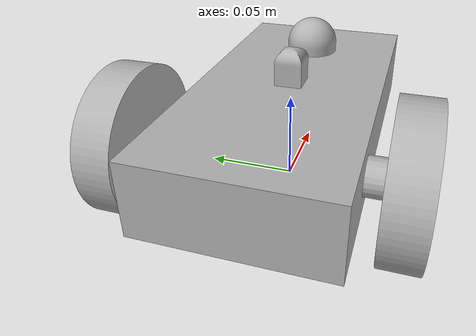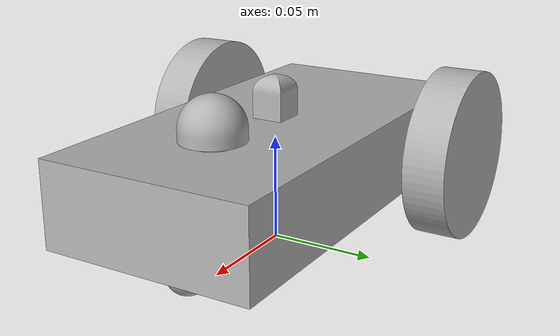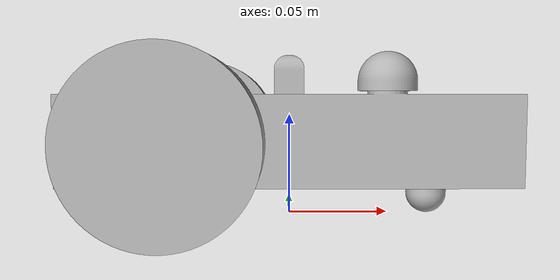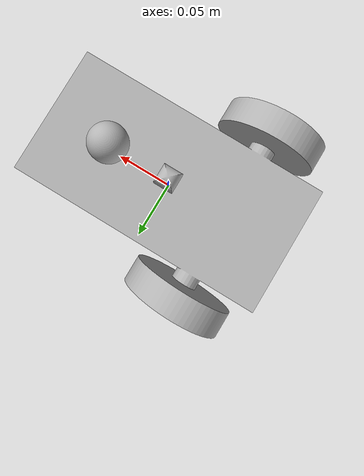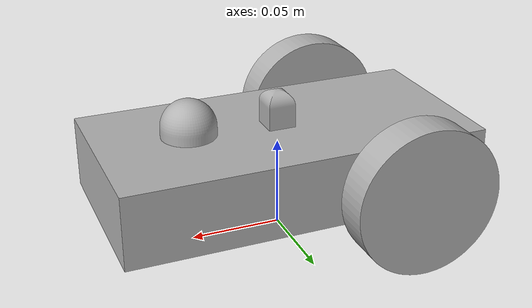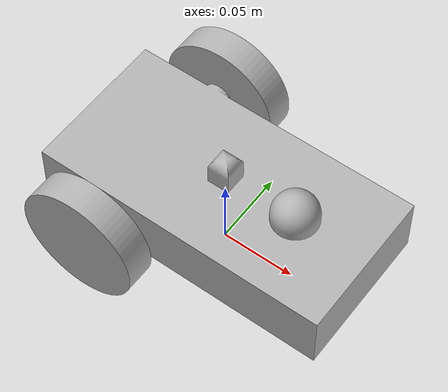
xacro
<?xml version="1.0" ?>
<robot name="my2wbnew" xmlns:xacro="http://www.ros.org/wiki/xacro">

<xacro:include filename="$(find my2wbnew_description)/urdf/materials.xacro" />
<xacro:include filename="$(find my2wbnew_description)/urdf/my2wbnew.trans" />
<xacro:include filename="$(find my2wbnew_description)/urdf/my2wbnew.gazebo" />

<link name="base_link">
  <pose>0 0 0.1 0 0 0</pose>    <!-- here  -->
  <inertial>
    <origin rpy="0 0 0" xyz="-0.0002870496075899094 0.0 0.03999708253972357"/>
    <mass value="6.339804143151893"/>
    <inertia ixx="0.006227" ixy="0.0" ixz="3e-06" iyy="0.02194" iyz="0.0" izz="0.026479"/>
  </inertial>
  <visual>
    <origin rpy="0 0 0" xyz="0 0 0"/>
    <geometry>
      <mesh filename="package://my2wbnew_description/meshes/base_link.stl" scale="0.001 0.001 0.001"/>
    </geometry>
    <material name="silver"/>
  </visual>
  <collision>
    <origin rpy="0 0 0" xyz="0 0 0"/>
    <geometry>
      <mesh filename="package://my2wbnew_description/meshes/base_link.stl" scale="0.001 0.001 0.001"/>
    </geometry>
  </collision>
</link>
<link name="base_footprint">
</link>
<joint name="dummy_joint" type="fixed">
  <parent link="base_footprint"/>
  <child link="base_link"/>
</joint>

<link name="left_wheel_1">
  <inertial>
    <origin rpy="0 0 0" xyz="1.386726641017244e-07 0.010000000000000009 -6.938893903907228e-18"/>
    <mass value="0.789168074581756"/>
    <inertia ixx="0.000342" ixy="0.0" ixz="-0.0" iyy="0.000631" iyz="0.0" izz="0.000342"/>
  </inertial>
  <visual>
    <origin rpy="0 0 0" xyz="0.049786 -0.06 -0.04"/>
    <geometry>
      <mesh filename="package://my2wbnew_description/meshes/left_wheel_1.stl" scale="0.001 0.001 0.001"/>
    </geometry>
    <material name="silver"/>
  </visual>
  <collision>
    <origin rpy="0 0 0" xyz="0.049786 -0.06 -0.04"/>
    <geometry>
      <mesh filename="package://my2wbnew_description/meshes/left_wheel_1.stl" scale="0.001 0.001 0.001"/>
    </geometry>
  </collision>
</link>

<link name="right_wheel_1">
  <inertial>
    <origin rpy="0 0 0" xyz="1.386726641017244e-07 -0.010000000000000009 -6.938893903907228e-18"/>
    <mass value="0.789168074581756"/>
    <inertia ixx="0.000342" ixy="0.0" ixz="-0.0" iyy="0.000631" iyz="-0.0" izz="0.000342"/>
  </inertial>
  <visual>
    <origin rpy="0 0 0" xyz="0.049786 0.06 -0.04"/>
    <geometry>
      <mesh filename="package://my2wbnew_description/meshes/right_wheel_1.stl" scale="0.001 0.001 0.001"/>
    </geometry>
    <material name="silver"/>
  </visual>
  <collision>
    <origin rpy="0 0 0" xyz="0.049786 0.06 -0.04"/>
    <geometry>
      <mesh filename="package://my2wbnew_description/meshes/right_wheel_1.stl" scale="0.001 0.001 0.001"/>
    </geometry>
  </collision>
</link>

<link name="caster_wheel_1">
  <inertial>
    <origin rpy="0 0 0" xyz="1.185740158837767e-09 0.0 -0.006552631578947371"/>
    <mass value="0.03123790295219451"/>
    <inertia ixx="1e-06" ixy="0.0" ixz="-0.0" iyy="1e-06" iyz="-0.0" izz="1e-06"/>
  </inertial>
  <visual>
    <origin rpy="0 0 0" xyz="-0.070116 -0.0 -0.016"/>
    <geometry>
      <mesh filename="package://my2wbnew_description/meshes/caster_wheel_1.stl" scale="0.001 0.001 0.001"/>
    </geometry>
    <material name="silver"/>
  </visual>
  <collision>
    <origin rpy="0 0 0" xyz="-0.070116 -0.0 -0.016"/>
    <geometry>
      <mesh filename="package://my2wbnew_description/meshes/caster_wheel_1.stl" scale="0.001 0.001 0.001"/>
    </geometry>
  </collision>
</link>

<link name="lidar_sensor_1">
  <inertial>
    <origin rpy="0 0 0" xyz="-2.762502050723814e-07 0.0 0.007916666666666669"/>
    <mass value="0.08323257036604453"/>
    <inertia ixx="6e-06" ixy="0.0" ixz="0.0" iyy="6e-06" iyz="0.0" izz="8e-06"/>
  </inertial>
  <visual>
    <origin rpy="0 0 0" xyz="-0.050015 -0.0 -0.062"/>
    <geometry>
      <mesh filename="package://my2wbnew_description/meshes/lidar_sensor_1.stl" scale="0.001 0.001 0.001"/>
    </geometry>
    <material name="silver"/>
  </visual>
  <collision>
    <origin rpy="0 0 0" xyz="-0.050015 -0.0 -0.062"/>
    <geometry>
      <mesh filename="package://my2wbnew_description/meshes/lidar_sensor_1.stl" scale="0.001 0.001 0.001"/>
    </geometry>
  </collision>
</link>

<link name="imu_sensor_1">
  <inertial>
    <origin rpy="0 0 0" xyz="1.3877787807814458e-18 -2.7755575615628915e-18 0.008847145831135023"/>
    <mass value="0.03093958997852424"/>
    <inertia ixx="1e-06" ixy="-0.0" ixz="0.0" iyy="1e-06" iyz="-0.0" izz="1e-06"/>
  </inertial>
  <visual>
    <origin rpy="0 0 0" xyz="-0.0 -0.0 -0.06"/>
    <geometry>
      <mesh filename="package://my2wbnew_description/meshes/imu_sensor_1.stl" scale="0.001 0.001 0.001"/>
    </geometry>
    <material name="silver"/>
  </visual>
  <collision>
    <origin rpy="0 0 0" xyz="-0.0 -0.0 -0.06"/>
    <geometry>
      <mesh filename="package://my2wbnew_description/meshes/imu_sensor_1.stl" scale="0.001 0.001 0.001"/>
    </geometry>
  </collision>
</link>

<joint name="Rev1" type="continuous">
  <origin rpy="0 0 0" xyz="-0.049786 0.06 0.04"/>
  <parent link="base_link"/>
  <child link="left_wheel_1"/>
  <axis xyz="0.0 1.0 0.0"/>
</joint>

<joint name="Rev2" type="continuous">
  <origin rpy="0 0 0" xyz="-0.049786 -0.06 0.04"/>
  <parent link="base_link"/>
  <child link="right_wheel_1"/>
  <axis xyz="0.0 1.0 0.0"/>
</joint>

<joint name="Rigid3" type="fixed">
  <origin rpy="0 0 0" xyz="0.070116 0.0 0.016"/>
  <parent link="base_link"/>
  <child link="caster_wheel_1"/>
</joint>

<joint name="Rigid4" type="fixed">
  <origin rpy="0 0 0" xyz="0.050015 0.0 0.062"/>
  <parent link="base_link"/>
  <child link="lidar_sensor_1"/>
</joint>

<joint name="Rigid7" type="fixed">
  <origin rpy="0 0 0" xyz="0.0 0.0 0.06"/>
  <parent link="base_link"/>
  <child link="imu_sensor_1"/>
</joint>

</robot>

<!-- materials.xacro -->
<robot name="my2wbnew" xmlns:xacro="http://www.ros.org/wiki/xacro" >

<material name="silver">
  <color rgba="0.700 0.700 0.700 1.000"/>
</material>

</robot>

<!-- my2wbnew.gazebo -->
<robot name="my2wbnew" xmlns:xacro="http://www.ros.org/wiki/xacro" >

<xacro:property name="body_color" value="Gazebo/Silver" />

<gazebo>
  <plugin filename="libgazebo_ros_control.so" name="control"/>
</gazebo>
<gazebo reference="base_link">
  <material>${body_color}</material>
  <mu1>0.2</mu1>
  <mu2>0.2</mu2>
  <selfCollide>true</selfCollide>
  <gravity>true</gravity>
</gazebo>

<gazebo reference="left_wheel_1">
  <material>${body_color}</material>
  <mu1>0.2</mu1>
  <mu2>0.2</mu2>
  <selfCollide>true</selfCollide>
</gazebo>

<gazebo reference="right_wheel_1">
  <material>${body_color}</material>
  <mu1>0.2</mu1>
  <mu2>0.2</mu2>
  <selfCollide>true</selfCollide>
</gazebo>

<gazebo reference="caster_wheel_1">
  <material>${body_color}</material>
  <mu1>0.2</mu1>
  <mu2>0.2</mu2>
  <selfCollide>true</selfCollide>
</gazebo>

<gazebo reference="lidar_sensor_1">
  <material>${body_color}</material>
  <mu1>0.2</mu1>
  <mu2>0.2</mu2>
  <selfCollide>true</selfCollide>
</gazebo>

<gazebo reference="imu_sensor_1">
  <material>${body_color}</material>
  <mu1>0.2</mu1>
  <mu2>0.2</mu2>
  <selfCollide>true</selfCollide>
</gazebo>

<gazebo>
    <plugin filename="libgazebo_ros_diff_drive.so" name="differential_drive_controller">
      <alwaysOn>true</alwaysOn>
      <updateRate>20</updateRate>
      <leftJoint>Rev1</leftJoint>
      <rightJoint>Rev2</rightJoint>
      <wheelSeparation>0.4</wheelSeparation>
      <wheelDiameter>0.2</wheelDiameter>
      <torque>0.1</torque>
      <commandTopic>cmd_vel</commandTopic>
      <odometryTopic>odom</odometryTopic>
      <odometryFrame>odom</odometryFrame>
      <robotBaseFrame>base_footprint</robotBaseFrame>
      <rosDebugLevel>na</rosDebugLevel>
      <publishWheelTF>false</publishWheelTF>
      <publishOdomTF>true</publishOdomTF>
      <publishWheelJointState>false</publishWheelJointState>
      <wheelAcceleration>0</wheelAcceleration>
      <wheelTorque>5</wheelTorque>
      <odometrySource>world</odometrySource>
      <publishTf>1</publishTf>
    </plugin>
  </gazebo>

  <gazebo reference="lidar_sensor_1">
    <sensor type="ray" name="head_hokuyo_sensor">
      <pose>0 0 0 0 0 0</pose>
      <visualize>false</visualize>
      <update_rate>20</update_rate>
      <ray>
        <scan>
          <horizontal>
            <samples>720</samples>
            <resolution>1</resolution>
            <min_angle>-1.570796</min_angle>
            <max_angle>1.570796</max_angle>
          </horizontal>
        </scan>
        <range>
          <min>0.10</min>
          <max>10.0</max>
          <resolution>0.01</resolution>
        </range>
        <noise>
          <type>gaussian</type>
          <mean>0.0</mean>
          <stddev>0.01</stddev>
        </noise>
      </ray>
      <plugin name="gazebo_ros_head_hokuyo_controller" filename="libgazebo_ros_laser.so">
        <topicName>/my2wbnew/laser/scan</topicName>
        <frameName>lidar_sensor_1</frameName>
      </plugin>
    </sensor>
  </gazebo>

<gazebo reference="imu_sensor_1">
    <gravity>true</gravity>
    <sensor name="imu_sensor" type="imu">
      <always_on>true</always_on>
      <update_rate>20</update_rate>
      <visualize>true</visualize>
      <topic>__default_topic__</topic>
      <plugin filename="libgazebo_ros_imu_sensor.so" name="imu_plugin">
        <topicName>imu_data</topicName>
        <bodyName>imu_sensor_1</bodyName>
        <updateRateHZ>50.0</updateRateHZ>
        <gaussianNoise>0.0</gaussianNoise>
        <xyzOffset>0 0 0</xyzOffset>
        <rpyOffset>0 0 0</rpyOffset>
        <frameName>imu_sensor_1</frameName>
        <initialOrientationAsReference>false</initialOrientationAsReference>
      </plugin>
      <pose>0 0 0 0 0 0</pose>
    </sensor>
  </gazebo>

</robot>
<!-- __default_topic__ -->
